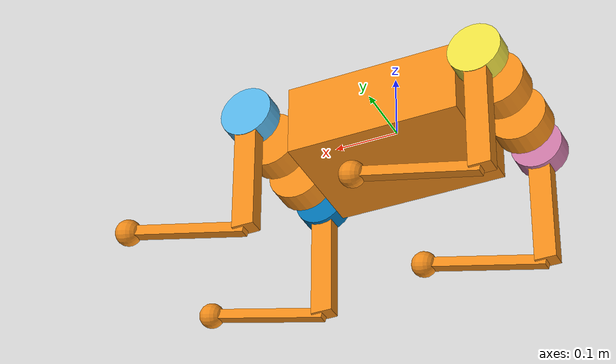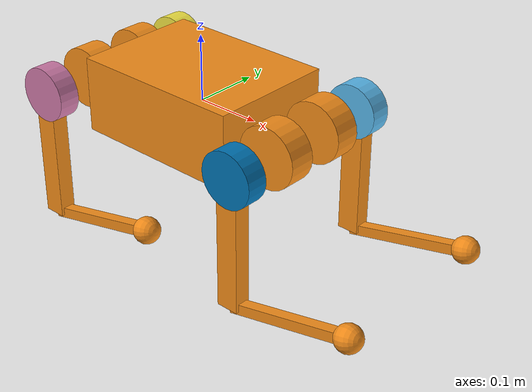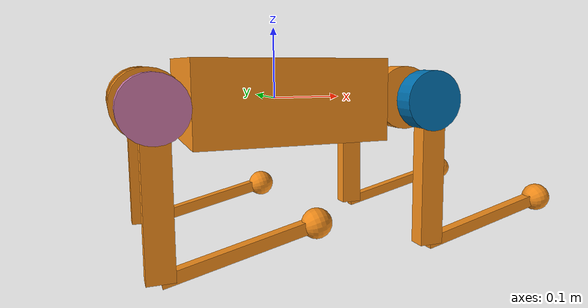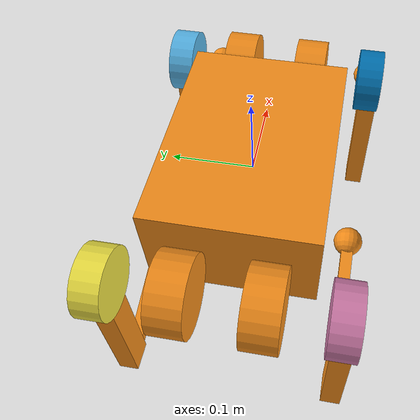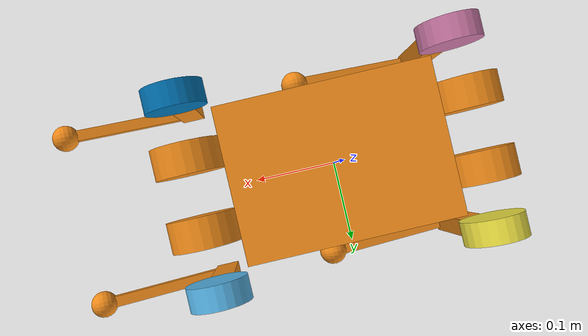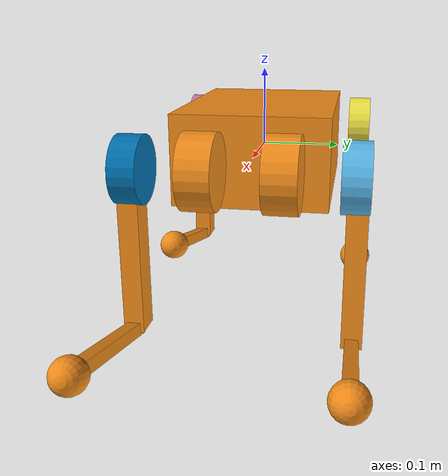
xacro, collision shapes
<?xml version="1.0"?>
<robot name="a1" xmlns:xacro="http://www.ros.org/wiki/xacro">

  <xacro:arg name="prefix" default="" />
  <xacro:arg name="sim_path" default="" />
  <xacro:arg name="namespace" default="" />
  <xacro:arg name="gazebo_controllers" default="" />
  <xacro:arg name="gazebo_classic" default="false" />
  <xacro:arg name="gazebo_ignition" default="true" />

  <xacro:include filename="$(find arena_robots)/robots/a1/urdf/include/const.xacro" />
  <xacro:include filename="$(find arena_robots)/robots/a1/urdf/include/materials.xacro" />
  <xacro:include filename="$(find arena_robots)/robots/a1/urdf/include/leg.xacro" />

  <link name="$(arg prefix)base">
    <visual>
      <origin rpy="0 0 0" xyz="0 0 0"/>
      <geometry>
        <box size="0.001 0.001 0.001"/>
      </geometry>
    </visual>
  </link>

  <joint name="$(arg prefix)floating_base" type="fixed">
    <origin rpy="0 0 0" xyz="0 0 0"/>
    <parent link="$(arg prefix)base"/>
    <child link="$(arg prefix)trunk"/>
  </joint>

  <link name="$(arg prefix)trunk">
    <visual>
      <origin rpy="0 0 0" xyz="0 0 0"/>
      <geometry>
        <mesh filename="package://arena_robots/robots/a1/meshes/trunk.dae" scale="1 1 1"/>
      </geometry>
      <material name="orange"/>
    </visual>
    <collision>
      <origin rpy="0 0 0" xyz="0 0 0"/>
      <geometry>
        <box size="${trunk_length} ${trunk_width} ${trunk_height}"/>
      </geometry>
    </collision>
    <inertial>
      <origin rpy="0 0 0" xyz="${trunk_com_x} ${trunk_com_y} ${trunk_com_z}"/>
      <mass value="${trunk_mass}"/>
      <inertia
        ixx="${trunk_ixx}" ixy="${trunk_ixy}" ixz="${trunk_ixz}"
        iyy="${trunk_iyy}" iyz="${trunk_iyz}"
        izz="${trunk_izz}"/>
    </inertial>
  </link>

  <joint name="$(arg prefix)imu_joint" type="fixed">
    <parent link="$(arg prefix)trunk"/>
    <child link="$(arg prefix)imu_link"/>
    <origin rpy="0 0 0" xyz="0 0 0"/>
  </joint>

  <link name="$(arg prefix)imu_link">
    <inertial>
      <mass value="0.001"/>
      <origin rpy="0 0 0" xyz="0 0 0"/>
      <inertia ixx="0.0001" ixy="0" ixz="0" iyy="0.0001" iyz="0" izz="0.0001"/>
    </inertial>
  </link>

  <xacro:leg name="FR" prefix="$(arg prefix)" mirror="-1" mirror_dae="False" front_hind="1" front_hind_dae="True">
    <origin rpy="0 0 0" xyz="${leg_offset_x} ${-leg_offset_y} 0"/>
  </xacro:leg>
  <xacro:leg name="FL" prefix="$(arg prefix)" mirror="1" mirror_dae="True" front_hind="1" front_hind_dae="True">
    <origin rpy="0 0 0" xyz="${leg_offset_x} ${leg_offset_y} 0"/>
  </xacro:leg>
  <xacro:leg name="RR" prefix="$(arg prefix)" mirror="-1" mirror_dae="False" front_hind="-1" front_hind_dae="False">
    <origin rpy="0 0 0" xyz="${-leg_offset_x} ${-leg_offset_y} 0"/>
  </xacro:leg>
  <xacro:leg name="RL" prefix="$(arg prefix)" mirror="1" mirror_dae="True" front_hind="-1" front_hind_dae="False">
    <origin rpy="0 0 0" xyz="${-leg_offset_x} ${leg_offset_y} 0"/>
  </xacro:leg>

  <xacro:include filename="$(find arena_robots)/robots/a1/urdf/base_hw/a1.ros2_control.urdf" />
  <xacro:a1_base_hw_controller prefix="$(arg prefix)"/>

  <gazebo>
    <plugin filename="libgz_ros2_control-system.so" name="gz_ros2_control::GazeboSimROS2ControlPlugin">
      <parameters>$(arg gazebo_controllers)</parameters>
      <ros>
        <namespace>$(arg namespace)</namespace>
      </ros>
    </plugin>
  </gazebo>

  <gazebo>
    <plugin filename="gz-sim-pose-publisher-system" name="gz::sim::systems::PosePublisher">
      <publish_model_pose>true</publish_model_pose>
      <publish_link_pose>false</publish_link_pose>
      <publish_collision_pose>false</publish_collision_pose>
      <publish_visual_pose>false</publish_visual_pose>
      <publish_sensor_pose>false</publish_sensor_pose>
      <publish_nested_model_pose>true</publish_nested_model_pose>
      <use_pose_vector_msg>false</use_pose_vector_msg>
    </plugin>
  </gazebo>

  <!-- Foot traction: legged stance needs high friction at the contact spheres. -->
  <xacro:macro name="foot_friction" params="leg prefix">
    <gazebo reference="${prefix}${leg}_foot">
      <mu1>0.8</mu1>
      <mu2>0.8</mu2>
      <kp>1000000.0</kp>
      <kd>100.0</kd>
    </gazebo>
  </xacro:macro>
  <xacro:foot_friction leg="FL" prefix="$(arg prefix)"/>
  <xacro:foot_friction leg="FR" prefix="$(arg prefix)"/>
  <xacro:foot_friction leg="RL" prefix="$(arg prefix)"/>
  <xacro:foot_friction leg="RR" prefix="$(arg prefix)"/>

</robot>

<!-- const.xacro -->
<robot name="a1" xmlns:xacro="http://www.ros.org/wiki/xacro">

    <!-- Constants for robot dimensions -->
    <xacro:property name="PI" value="3.1415926535897931"/>
    <xacro:property name="stick_mass" value="0.00001"/>

    <!-- simplified collision value -->
    <xacro:property name="trunk_width" value="0.194"/>
    <xacro:property name="trunk_length" value="0.267"/>
    <xacro:property name="trunk_height" value="0.114"/>
    <xacro:property name="hip_radius" value="0.046"/>
    <xacro:property name="hip_length" value="0.04"/>
    <xacro:property name="thigh_shoulder_radius" value="0.041"/>
    <xacro:property name="thigh_shoulder_length" value="0.032"/>
    <xacro:property name="thigh_width" value="0.0245"/>
    <xacro:property name="thigh_height" value="0.034"/>
    <xacro:property name="calf_width" value="0.016"/>
    <xacro:property name="calf_height" value="0.016"/>
    <xacro:property name="foot_radius" value="0.02"/>
    <xacro:property name="stick_radius" value="0.01"/>
    <xacro:property name="stick_length" value="0.2"/>

    <!-- kinematic value -->
    <xacro:property name="thigh_offset" value="0.0838"/>
    <xacro:property name="thigh_length" value="0.2"/>
    <xacro:property name="calf_length" value="0.2"/>

    <!-- leg offset from trunk center value -->
    <xacro:property name="leg_offset_x" value="0.1805"/>
    <xacro:property name="leg_offset_y" value="0.047"/>
    <xacro:property name="trunk_offset_z" value="0.01675"/>
    <xacro:property name="hip_offset" value="0.065"/>

    <!-- joint limits -->
    <xacro:property name="damping" value="0"/>
    <xacro:property name="friction" value="0"/>
    <xacro:property name="hip_max" value="46"/>
    <xacro:property name="hip_min" value="-46"/>
    <xacro:property name="hip_velocity_max" value="21"/>
    <xacro:property name="hip_torque_max" value="33.5"/>
    <xacro:property name="thigh_max" value="240"/>
    <xacro:property name="thigh_min" value="-60"/>
    <xacro:property name="thigh_velocity_max" value="21"/>
    <xacro:property name="thigh_torque_max" value="33.5"/>
    <xacro:property name="calf_max" value="-52.5"/>
    <xacro:property name="calf_min" value="-154.5"/>
    <xacro:property name="calf_velocity_max" value="21"/>
    <xacro:property name="calf_torque_max" value="33.5"/>

    <!-- dynamics inertial value        total 13.9kg -->
    <!-- trunk -->
    <xacro:property name="trunk_mass" value="6.0"/>
    <xacro:property name="trunk_com_x" value="0.0000"/>
    <xacro:property name="trunk_com_y" value="0.0041"/>
    <xacro:property name="trunk_com_z" value="-0.0005"/>
    <xacro:property name="trunk_ixx" value="0.0158533"/>
    <xacro:property name="trunk_ixy" value="-0.0000366"/>
    <xacro:property name="trunk_ixz" value="-0.0000611"/>
    <xacro:property name="trunk_iyy" value="0.0377999"/>
    <xacro:property name="trunk_iyz" value="-0.0000275"/>
    <xacro:property name="trunk_izz" value="0.0456542"/>

    <!-- hip (left front) -->
    <xacro:property name="hip_mass" value="0.595"/>
    <xacro:property name="hip_com_x" value="-0.003875"/>
    <xacro:property name="hip_com_y" value="0.001622"/>
    <xacro:property name="hip_com_z" value="0.000042"/>
    <xacro:property name="hip_ixx" value="0.000402747"/>
    <xacro:property name="hip_ixy" value="-0.000008709"/>
    <xacro:property name="hip_ixz" value="-0.000000297"/>
    <xacro:property name="hip_iyy" value="0.000691123"/>
    <xacro:property name="hip_iyz" value="-0.000000545"/>
    <xacro:property name="hip_izz" value="0.000487919"/>

    <!-- thigh -->
    <xacro:property name="thigh_mass" value="0.888"/>
    <xacro:property name="thigh_com_x" value="-0.003574"/>
    <xacro:property name="thigh_com_y" value="-0.019529"/>
    <xacro:property name="thigh_com_z" value="-0.030323"/>
    <xacro:property name="thigh_ixx" value="0.005251806"/>
    <xacro:property name="thigh_ixy" value="-0.000002168"/>
    <xacro:property name="thigh_ixz" value="0.000346889"/>
    <xacro:property name="thigh_iyy" value="0.005000475"/>
    <xacro:property name="thigh_iyz" value="-0.000028174"/>
    <xacro:property name="thigh_izz" value="0.001110200"/>

    <!-- calf -->
    <xacro:property name="calf_mass" value="0.151"/>
    <xacro:property name="calf_com_x" value="0.007105"/>
    <xacro:property name="calf_com_y" value="-0.000239"/>
    <xacro:property name="calf_com_z" value="-0.096933"/>
    <xacro:property name="calf_ixx" value="0.002344758"/>
    <xacro:property name="calf_ixy" value="0.0"/>
    <xacro:property name="calf_ixz" value="-0.000141275"/>
    <xacro:property name="calf_iyy" value="0.002360755"/>
    <xacro:property name="calf_iyz" value="0.0"/>
    <xacro:property name="calf_izz" value="0.000031158"/>

    <!-- foot -->
    <xacro:property name="foot_mass" value="0.06"/>

</robot>

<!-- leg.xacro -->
<robot xmlns:xacro="http://www.ros.org/wiki/xacro">

    <xacro:macro name="leg" params="name prefix mirror mirror_dae front_hind front_hind_dae *origin">

        <joint name="${prefix}${name}_hip_joint" type="revolute">
            <xacro:insert_block name="origin"/>
            <parent link="${prefix}trunk"/>
            <child link="${prefix}${name}_hip"/>
            <axis xyz="1 0 0"/>
            <dynamics damping="${damping}" friction="${friction}"/>
            <xacro:if value="${(mirror_dae == True)}">
                <limit effort="${hip_torque_max}" velocity="${hip_velocity_max}" lower="${hip_min*PI/180.0}" upper="${hip_max*PI/180.0}"/>
            </xacro:if>
            <xacro:if value="${(mirror_dae == False)}">
                <limit effort="${hip_torque_max}" velocity="${hip_velocity_max}" lower="${-hip_max*PI/180.0}" upper="${-hip_min*PI/180.0}"/>
            </xacro:if>
        </joint>

        <link name="${prefix}${name}_hip">
            <visual>
                <xacro:if value="${(mirror_dae == True) and (front_hind_dae == True)}">
                    <origin rpy="0 0 0" xyz="0 0 0"/>
                </xacro:if>
                <xacro:if value="${(mirror_dae == False) and (front_hind_dae == True)}">
                    <origin rpy="${PI} 0 0" xyz="0 0 0"/>
                </xacro:if>
                <xacro:if value="${(mirror_dae == True) and (front_hind_dae == False)}">
                    <origin rpy="0 ${PI} 0" xyz="0 0 0"/>
                </xacro:if>
                <xacro:if value="${(mirror_dae == False) and (front_hind_dae == False)}">
                    <origin rpy="${PI} ${PI} 0" xyz="0 0 0"/>
                </xacro:if>
                <geometry>
                    <mesh filename="package://arena_robots/robots/a1/meshes/hip.dae" scale="1 1 1"/>
                </geometry>
                <material name="orange"/>
            </visual>
            <collision>
                <origin rpy="${PI/2.0} 0 0" xyz="0 0 0"/>
                <geometry>
                    <cylinder length="${hip_length}" radius="${hip_radius}"/>
                </geometry>
            </collision>
            <inertial>
                <origin rpy="0 0 0" xyz="${hip_com_x*front_hind} ${hip_com_y*mirror} ${hip_com_z}"/>
                <mass value="${hip_mass}"/>
                <inertia
                    ixx="${hip_ixx}" ixy="${hip_ixy*mirror*front_hind}" ixz="${hip_ixz*front_hind}"
                    iyy="${hip_iyy}" iyz="${hip_iyz*mirror}"
                    izz="${hip_izz}"/>
            </inertial>
        </link>

        <joint name="${prefix}${name}_hip_fixed" type="fixed">
            <origin rpy="0 0 0" xyz="0 ${(thigh_shoulder_length/2.0+hip_offset)*mirror} 0"/>
            <parent link="${prefix}${name}_hip"/>
            <child link="${prefix}${name}_thigh_shoulder"/>
        </joint>

        <!-- this link is only for collision -->
        <link name="${prefix}${name}_thigh_shoulder">
            <collision>
                <origin rpy="${PI/2.0} 0 0" xyz="0 0 0"/>
                <geometry>
                    <cylinder length="${thigh_shoulder_length}" radius="${thigh_shoulder_radius}"/>
                </geometry>
            </collision>
        </link>

        <joint name="${prefix}${name}_thigh_joint" type="revolute">
            <origin rpy="0 0 0" xyz="0 ${thigh_offset*mirror} 0"/>
            <parent link="${prefix}${name}_hip"/>
            <child link="${prefix}${name}_thigh"/>
            <axis xyz="0 1 0"/>
            <dynamics damping="${damping}" friction="${friction}"/>
            <limit effort="${thigh_torque_max}" velocity="${thigh_velocity_max}" lower="${thigh_min*PI/180.0}" upper="${thigh_max*PI/180.0}"/>
        </joint>

        <link name="${prefix}${name}_thigh">
            <visual>
                <origin rpy="0 0 0" xyz="0 0 0"/>
                <geometry>
                    <xacro:if value="${mirror_dae == True}">
                        <mesh filename="package://arena_robots/robots/a1/meshes/thigh.dae" scale="1 1 1"/>
                    </xacro:if>
                    <xacro:if value="${mirror_dae == False}">
                        <mesh filename="package://arena_robots/robots/a1/meshes/thigh_mirror.dae" scale="1 1 1"/>
                    </xacro:if>
                </geometry>
                <material name="orange"/>
            </visual>
            <collision>
                <origin rpy="0 ${PI/2.0} 0" xyz="0 0 ${-thigh_length/2.0}"/>
                <geometry>
                    <box size="${thigh_length} ${thigh_width} ${thigh_height}"/>
                </geometry>
            </collision>
            <inertial>
                <origin rpy="0 0 0" xyz="${thigh_com_x} ${thigh_com_y*mirror} ${thigh_com_z}"/>
                <mass value="${thigh_mass}"/>
                <inertia
                    ixx="${thigh_ixx}" ixy="${thigh_ixy*mirror}" ixz="${thigh_ixz}"
                    iyy="${thigh_iyy}" iyz="${thigh_iyz*mirror}"
                    izz="${thigh_izz}"/>
            </inertial>
        </link>

        <joint name="${prefix}${name}_calf_joint" type="revolute">
            <origin rpy="0 0 0" xyz="0 0 ${-thigh_length}"/>
            <parent link="${prefix}${name}_thigh"/>
            <child link="${prefix}${name}_calf"/>
            <axis xyz="0 1 0"/>
            <dynamics damping="${damping}" friction="${friction}"/>
            <limit effort="${calf_torque_max}" velocity="${calf_velocity_max}" lower="${calf_min*PI/180.0}" upper="${calf_max*PI/180.0}"/>
        </joint>

        <link name="${prefix}${name}_calf">
            <visual>
                <origin rpy="0 0 0" xyz="0 0 0"/>
                <geometry>
                    <mesh filename="package://arena_robots/robots/a1/meshes/calf.dae" scale="1 1 1"/>
                </geometry>
                <material name="orange"/>
            </visual>
            <collision>
                <origin rpy="0 ${PI/2.0} 0" xyz="0 0 ${-calf_length/2.0}"/>
                <geometry>
                    <box size="${calf_length} ${calf_width} ${calf_height}"/>
                </geometry>
            </collision>
            <inertial>
                <origin rpy="0 0 0" xyz="${calf_com_x} ${calf_com_y} ${calf_com_z}"/>
                <mass value="${calf_mass}"/>
                <inertia
                    ixx="${calf_ixx}" ixy="${calf_ixy}" ixz="${calf_ixz}"
                    iyy="${calf_iyy}" iyz="${calf_iyz}"
                    izz="${calf_izz}"/>
            </inertial>
        </link>

        <joint name="${prefix}${name}_foot_fixed" type="fixed">
            <origin rpy="0 0 0" xyz="0 0 ${-(calf_length)}"/>
            <parent link="${prefix}${name}_calf"/>
            <child link="${prefix}${name}_foot"/>
        </joint>

        <link name="${prefix}${name}_foot">
            <visual>
                <origin rpy="0 0 0" xyz="0 0 0"/>
                <geometry>
                    <sphere radius="${foot_radius-0.01}"/>
                </geometry>
                <material name="orange"/>
            </visual>
            <collision>
                <origin rpy="0 0 0" xyz="0 0 0"/>
                <geometry>
                    <sphere radius="${foot_radius}"/>
                </geometry>
            </collision>
            <inertial>
                <mass value="${foot_mass}"/>
                <inertia
                    ixx="${(2*foot_mass)/5.0*(foot_radius*foot_radius)}" ixy="0.0" ixz="0.0"
                    iyy="${(2*foot_mass)/5.0*(foot_radius*foot_radius)}" iyz="0.0"
                    izz="${(2*foot_mass)/5.0*(foot_radius*foot_radius)}"/>
            </inertial>
        </link>

    </xacro:macro>
</robot>
